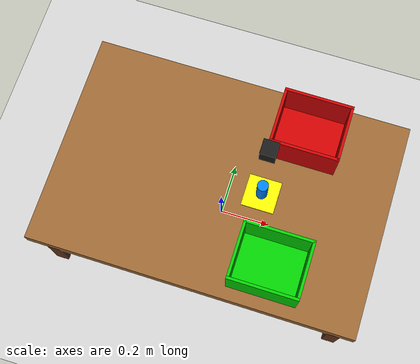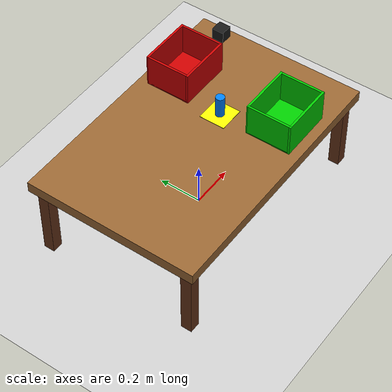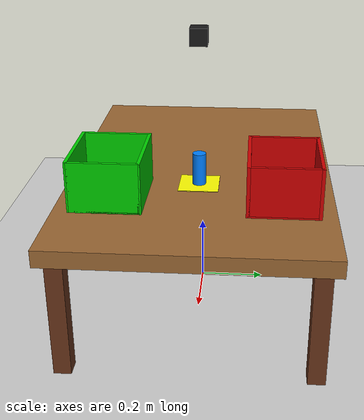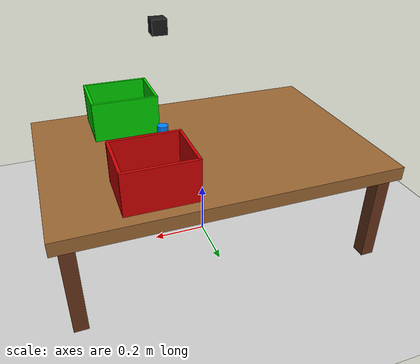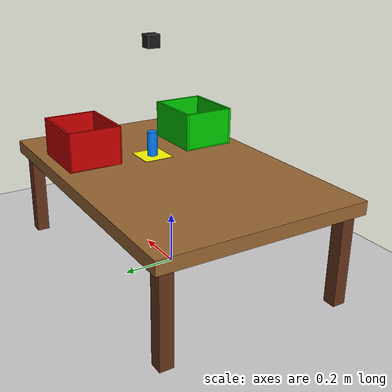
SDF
<?xml version="1.0"?>
<sdf version="1.8">
  <world name="sorting_world">

    <!-- Physics -->
    <physics name="1ms" type="ignored">
      <max_step_size>0.001</max_step_size>
      <real_time_factor>1.0</real_time_factor>
    </physics>

    <!-- Plugins -->
    <plugin filename="gz-sim-physics-system"
            name="gz::sim::systems::Physics"/>
    <plugin filename="gz-sim-user-commands-system"
            name="gz::sim::systems::UserCommands"/>
    <plugin filename="gz-sim-scene-broadcaster-system"
            name="gz::sim::systems::SceneBroadcaster"/>
    <plugin filename="gz-sim-contact-system"
            name="gz::sim::systems::Contact"/>
    <plugin filename="gz-sim-sensors-system"
            name="gz::sim::systems::Sensors">
      <render_engine>ogre2</render_engine>
    </plugin>

    <!-- Lighting -->
    <light name="sun" type="directional">
      <cast_shadows>false</cast_shadows>        <!-- no shadows on pick surface -->
      <pose>0 0 10 0 0 0</pose>
      <diffuse>0.95 0.95 0.95 1</diffuse>       <!-- brighter, more neutral -->
      <specular>0.05 0.05 0.05 1</specular>     <!-- minimal specular → no glare -->
      <direction>0 0 -1</direction>             <!-- straight down, no bias -->
    </light>
    <!-- Add a fill light for even illumination -->
    <light name="fill_light" type="directional">
      <cast_shadows>false</cast_shadows>
      <pose>0 0 5 0 0 0</pose>
      <diffuse>0.3 0.3 0.3 1</diffuse>
      <specular>0.0 0.0 0.0 1</specular>
      <direction>0.3 0.3 -0.7</direction>
    </light>

    <!-- Ground plane -->
    <model name="ground_plane">
      <static>true</static>
      <link name="link">
        <collision name="collision">
          <geometry><plane><normal>0 0 1</normal></plane></geometry>
        </collision>
        <visual name="visual">
          <geometry><plane><normal>0 0 1</normal><size>10 10</size></plane></geometry>
          <material>
            <ambient>0.8 0.8 0.8 1</ambient>
            <diffuse>0.8 0.8 0.8 1</diffuse>
          </material>
        </visual>
      </link>
    </model>

    <!-- Worktable -->
    <model name="table">
      <static>true</static>
      <pose>0 0 0 0 0 0</pose>
      <link name="link">
        <collision name="collision">
          <pose>0 0 0.375 0 0 0</pose>
          <geometry>
            <box><size>1.2 0.8 0.05</size></box>
          </geometry>
        </collision>
        <visual name="visual">
          <pose>0 0 0.375 0 0 0</pose>
          <geometry>
            <box><size>1.2 0.8 0.05</size></box>
          </geometry>
          <material>
            <ambient>0.6 0.4 0.2 1</ambient>
            <diffuse>0.6 0.4 0.2 1</diffuse>
          </material>
        </visual>
        <!-- Table legs -->
        <collision name="leg1"><pose>0.55 0.35 0.175 0 0 0</pose>
          <geometry><box><size>0.05 0.05 0.35</size></box></geometry></collision>
        <visual name="leg1"><pose>0.55 0.35 0.175 0 0 0</pose>
          <geometry><box><size>0.05 0.05 0.35</size></box></geometry>
          <material><ambient>0.4 0.2 0.1 1</ambient></material></visual>
        <collision name="leg2"><pose>-0.55 0.35 0.175 0 0 0</pose>
          <geometry><box><size>0.05 0.05 0.35</size></box></geometry></collision>
        <visual name="leg2"><pose>-0.55 0.35 0.175 0 0 0</pose>
          <geometry><box><size>0.05 0.05 0.35</size></box></geometry>
          <material><ambient>0.4 0.2 0.1 1</ambient></material></visual>
        <collision name="leg3"><pose>0.55 -0.35 0.175 0 0 0</pose>
          <geometry><box><size>0.05 0.05 0.35</size></box></geometry></collision>
        <visual name="leg3"><pose>0.55 -0.35 0.175 0 0 0</pose>
          <geometry><box><size>0.05 0.05 0.35</size></box></geometry>
          <material><ambient>0.4 0.2 0.1 1</ambient></material></visual>
        <collision name="leg4"><pose>-0.55 -0.35 0.175 0 0 0</pose>
          <geometry><box><size>0.05 0.05 0.35</size></box></geometry></collision>
        <visual name="leg4"><pose>-0.55 -0.35 0.175 0 0 0</pose>
          <geometry><box><size>0.05 0.05 0.35</size></box></geometry>
          <material><ambient>0.4 0.2 0.1 1</ambient></material></visual>
      </link>
    </model>

    <!-- Good bottles bin (green) -->
    <model name="bin_good">
      <static>true</static>
      <pose>0.25 -0.25 0.4 0 0 0</pose>
      <link name="link">
        <visual name="back"><pose>0 -0.1 0.075 0 0 0</pose>
          <geometry><box><size>0.25 0.01 0.15</size></box></geometry>
          <material><ambient>0.0 0.8 0.0 1</ambient><diffuse>0.0 0.8 0.0 1</diffuse></material></visual>
        <collision name="back"><pose>0 -0.1 0.075 0 0 0</pose>
          <geometry><box><size>0.25 0.01 0.15</size></box></geometry></collision>
        <visual name="front"><pose>0 0.1 0.075 0 0 0</pose>
          <geometry><box><size>0.25 0.01 0.15</size></box></geometry>
          <material><ambient>0.0 0.8 0.0 1</ambient><diffuse>0.0 0.8 0.0 1</diffuse></material></visual>
        <collision name="front"><pose>0 0.1 0.075 0 0 0</pose>
          <geometry><box><size>0.25 0.01 0.15</size></box></geometry></collision>
        <visual name="left"><pose>-0.12 0 0.075 0 0 0</pose>
          <geometry><box><size>0.01 0.2 0.15</size></box></geometry>
          <material><ambient>0.0 0.8 0.0 1</ambient><diffuse>0.0 0.8 0.0 1</diffuse></material></visual>
        <collision name="left"><pose>-0.12 0 0.075 0 0 0</pose>
          <geometry><box><size>0.01 0.2 0.15</size></box></geometry></collision>
        <visual name="right"><pose>0.12 0 0.075 0 0 0</pose>
          <geometry><box><size>0.01 0.2 0.15</size></box></geometry>
          <material><ambient>0.0 0.8 0.0 1</ambient><diffuse>0.0 0.8 0.0 1</diffuse></material></visual>
        <collision name="right"><pose>0.12 0 0.075 0 0 0</pose>
          <geometry><box><size>0.01 0.2 0.15</size></box></geometry></collision>
        <visual name="bottom"><pose>0 0 0 0 0 0</pose>
          <geometry><box><size>0.25 0.2 0.01</size></box></geometry>
          <material><ambient>0.0 0.8 0.0 1</ambient><diffuse>0.0 0.8 0.0 1</diffuse></material></visual>
        <collision name="bottom"><pose>0 0 0 0 0 0</pose>
          <geometry><box><size>0.25 0.2 0.01</size></box></geometry></collision>
      </link>
    </model>

    <!-- Defective bottles bin (red) -->
    <model name="bin_defective">
      <static>true</static>
      <pose>0.25 0.25 0.4 0 0 0</pose>
      <link name="link">
        <visual name="back"><pose>0 -0.1 0.075 0 0 0</pose>
          <geometry><box><size>0.25 0.01 0.15</size></box></geometry>
          <material><ambient>0.8 0.0 0.0 1</ambient><diffuse>0.8 0.0 0.0 1</diffuse></material></visual>
        <collision name="back"><pose>0 -0.1 0.075 0 0 0</pose>
          <geometry><box><size>0.25 0.01 0.15</size></box></geometry></collision>
        <visual name="front"><pose>0 0.1 0.075 0 0 0</pose>
          <geometry><box><size>0.25 0.01 0.15</size></box></geometry>
          <material><ambient>0.8 0.0 0.0 1</ambient><diffuse>0.8 0.0 0.0 1</diffuse></material></visual>
        <collision name="front"><pose>0 0.1 0.075 0 0 0</pose>
          <geometry><box><size>0.25 0.01 0.15</size></box></geometry></collision>
        <visual name="left"><pose>-0.12 0 0.075 0 0 0</pose>
          <geometry><box><size>0.01 0.2 0.15</size></box></geometry>
          <material><ambient>0.8 0.0 0.0 1</ambient><diffuse>0.8 0.0 0.0 1</diffuse></material></visual>
        <collision name="left"><pose>-0.12 0 0.075 0 0 0</pose>
          <geometry><box><size>0.01 0.2 0.15</size></box></geometry></collision>
        <visual name="right"><pose>0.12 0 0.075 0 0 0</pose>
          <geometry><box><size>0.01 0.2 0.15</size></box></geometry>
          <material><ambient>0.8 0.0 0.0 1</ambient><diffuse>0.8 0.0 0.0 1</diffuse></material></visual>
        <collision name="right"><pose>0.12 0 0.075 0 0 0</pose>
          <geometry><box><size>0.01 0.2 0.15</size></box></geometry></collision>
        <visual name="bottom"><pose>0 0 0 0 0 0</pose>
          <geometry><box><size>0.25 0.2 0.01</size></box></geometry>
          <material><ambient>0.8 0.0 0.0 1</ambient><diffuse>0.8 0.0 0.0 1</diffuse></material></visual>
        <collision name="bottom"><pose>0 0 0 0 0 0</pose>
          <geometry><box><size>0.25 0.2 0.01</size></box></geometry></collision>
      </link>
    </model>

    <!-- Inspection area marker on table -->
    <model name="inspection_marker">
      <static>true</static>
      <pose>0.15 0 0.402 0 0 0</pose>
      <link name="link">
        <visual name="visual">
          <geometry><box><size>0.12 0.12 0.002</size></box></geometry>
          <material><ambient>1.0 1.0 0.0 1</ambient><diffuse>1.0 1.0 0.0 1</diffuse></material>
        </visual>
      </link>
    </model>

    <!-- Overhead camera -->
    <model name="overhead_camera">
      <static>true</static>
      <pose>0.15 0 0.85 0 1.5708 0</pose>
      <link name="camera_link">
        <visual name="visual">
          <geometry><box><size>0.05 0.05 0.05</size></box></geometry>
          <material><ambient>0.1 0.1 0.1 1</ambient></material>
        </visual>
        <sensor name="camera" type="camera">
          <camera>
            <horizontal_fov>1.047</horizontal_fov>
            <image>
              <width>640</width>
              <height>480</height>
              <format>R8G8B8</format>
            </image>
            <clip>
              <near>0.1</near>
              <far>10</far>
            </clip>
          </camera>
          <always_on>1</always_on>
          <update_rate>30</update_rate>
          <visualize>true</visualize>
          <topic>/camera/image_raw</topic>
        </sensor>
      </link>
    </model>

    <!-- Good bottle on inspection area -->
    <model name="bottle_1">
      <pose>0.15 0 0.45 0 0 0</pose>
      <link name="bottle_link">
        <inertial>
          <mass>0.05</mass>
          <inertia>
            <ixx>0.0001</ixx><ixy>0</ixy><ixz>0</ixz>
            <iyy>0.0001</iyy><iyz>0</iyz>
            <izz>0.00005</izz>
          </inertia>
        </inertial>
        <collision name="collision">
          <geometry><cylinder><radius>0.02</radius><length>0.1</length></cylinder></geometry>
        </collision>
        <visual name="visual">
          <geometry><cylinder><radius>0.02</radius><length>0.1</length></cylinder></geometry>
          <material><ambient>0.0 0.5 1.0 1</ambient><diffuse>0.0 0.5 1.0 1</diffuse></material>
        </visual>
      </link>
    </model>

  </world>
</sdf>
